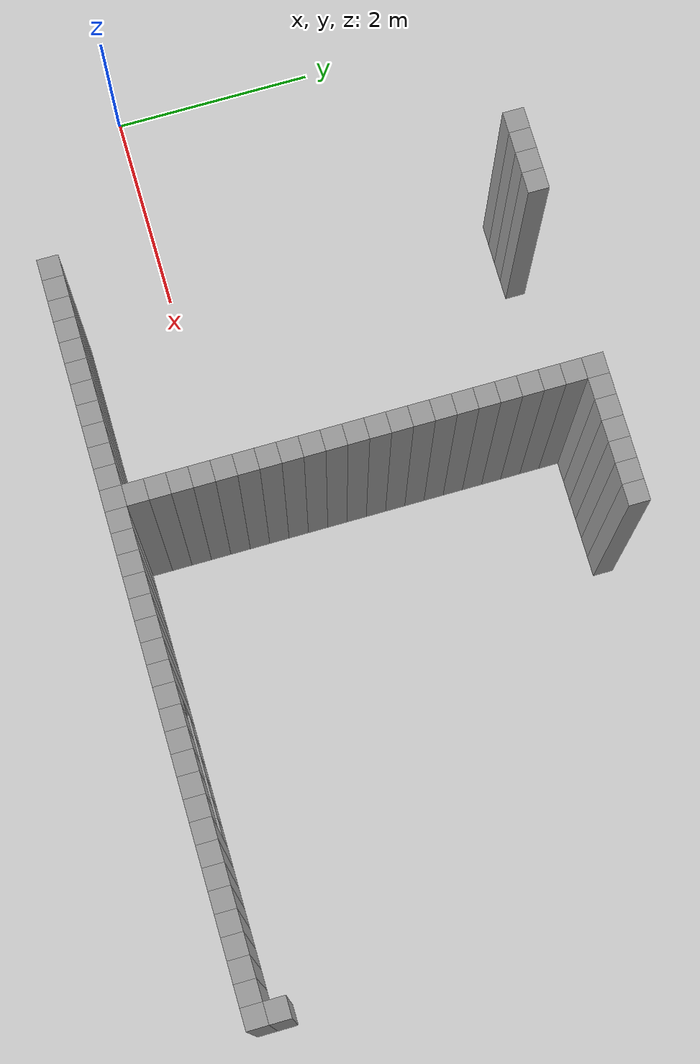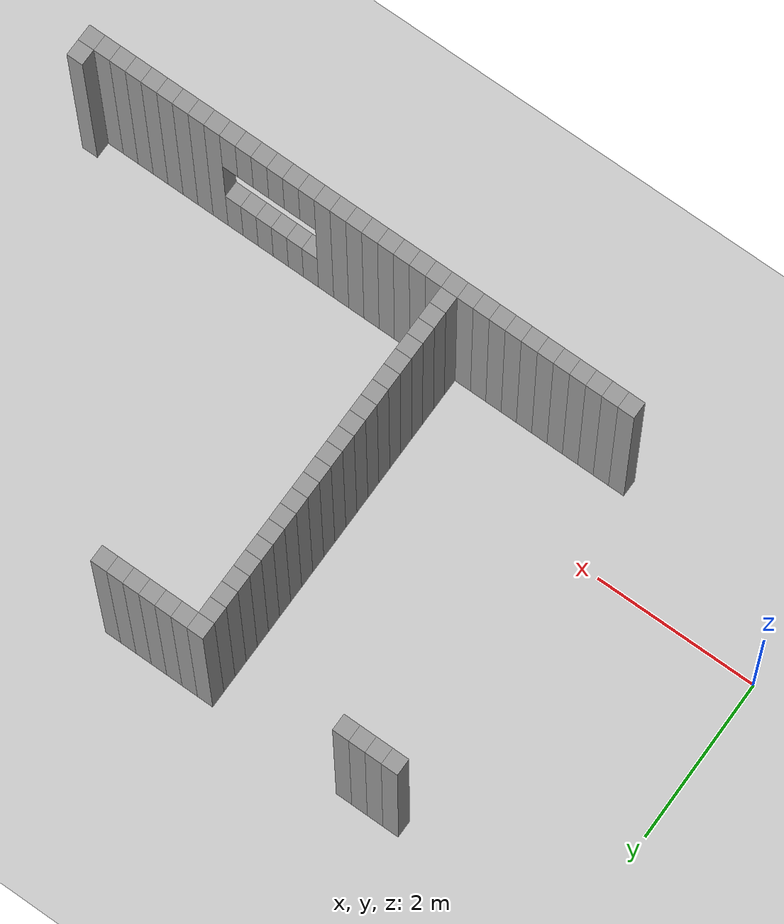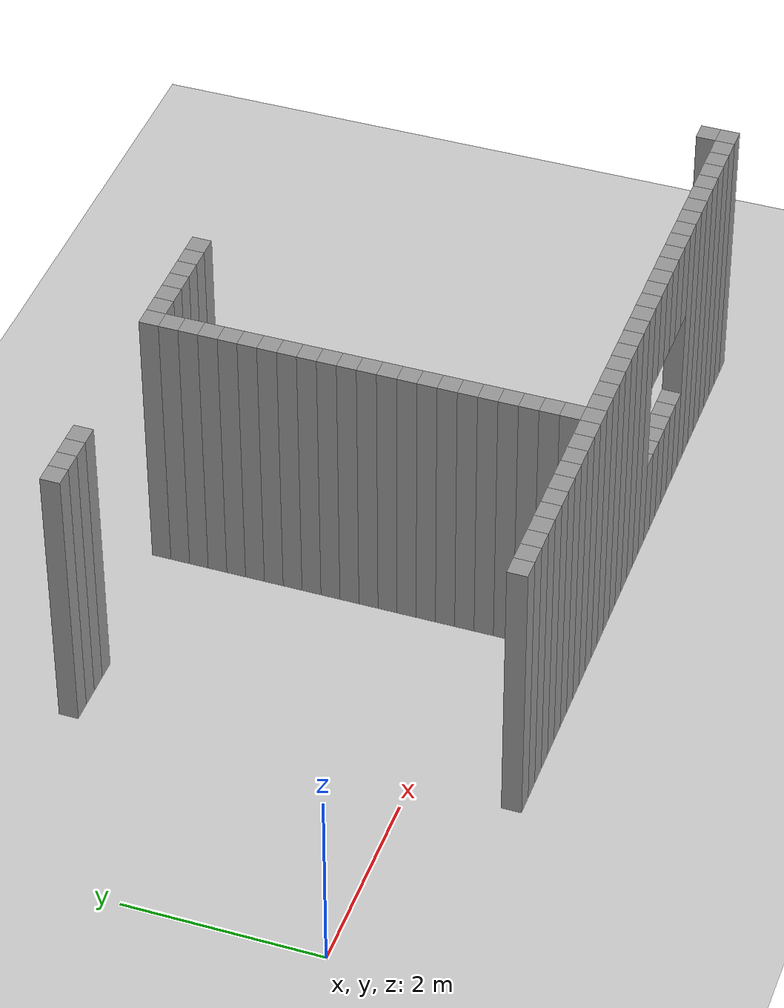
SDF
<sdf version="1.7">
 <world name="default">
  <model name="ground_plane">
   <static>1</static>
   <link name="link">
    <collision name="collision">
     <geometry><plane><normal>0 0 1</normal><size>100 100</size></plane></geometry>
     <surface>
      <contact><collide_bitmask>65535</collide_bitmask></contact>
      <friction><ode><mu>100</mu><mu2>50</mu2></ode></friction>
     </surface>
    </collision>
    <visual name="visual">
     <cast_shadows>0</cast_shadows>
     <geometry><plane><normal>0 0 1</normal><size>100 100</size></plane></geometry>
     <material>
      <script><uri>file://media/materials/scripts/gazebo.material</uri><name>Gazebo/Grey</name></script>
     </material>
    </visual>
   </link>
  </model>
  <model name="05222">
   <pose>-1 -1 0 0 -0 0</pose>
   <link name="Wall_22">
    <collision name="Wall_22_Collision">
     <geometry><box><size>0.2 0.2 3</size></box></geometry>
     <pose>0 0 1.5 0 -0 0</pose>
    </collision>
    <visual name="Wall_22_Visual">
     <pose>0 0 1.5 0 -0 0</pose>
     <geometry><box><size>0.2 0.2 3</size></box></geometry>
     <material>
      <script><uri>file://media/materials/scripts/gazebo.material</uri><name>Gazebo/Grey</name></script>
      <ambient>1 1 1 1</ambient>
     </material>
     <meta><layer>0</layer></meta>
    </visual>
    <pose>3.4000000000000004 0.0 0 0 -0 0</pose>
   </link>
   <link name="Wall_23">
    <collision name="Wall_23_Collision">
     <geometry><box><size>0.2 0.2 3</size></box></geometry>
     <pose>0 0 1.5 0 -0 0</pose>
    </collision>
    <visual name="Wall_23_Visual">
     <pose>0 0 1.5 0 -0 0</pose>
     <geometry><box><size>0.2 0.2 3</size></box></geometry>
     <material>
      <script><uri>file://media/materials/scripts/gazebo.material</uri><name>Gazebo/Grey</name></script>
      <ambient>1 1 1 1</ambient>
     </material>
     <meta><layer>0</layer></meta>
    </visual>
    <pose>3.6 0.0 0 0 -0 0</pose>
   </link>
   <link name="Wall_24">
    <collision name="Wall_24_Collision">
     <geometry><box><size>0.2 0.2 3</size></box></geometry>
     <pose>0 0 1.5 0 -0 0</pose>
    </collision>
    <visual name="Wall_24_Visual">
     <pose>0 0 1.5 0 -0 0</pose>
     <geometry><box><size>0.2 0.2 3</size></box></geometry>
     <material>
      <script><uri>file://media/materials/scripts/gazebo.material</uri><name>Gazebo/Grey</name></script>
      <ambient>1 1 1 1</ambient>
     </material>
     <meta><layer>0</layer></meta>
    </visual>
    <pose>3.8000000000000003 0.0 0 0 -0 0</pose>
   </link>
   <link name="Wall_25">
    <collision name="Wall_25_Collision">
     <geometry><box><size>0.2 0.2 3</size></box></geometry>
     <pose>0 0 1.5 0 -0 0</pose>
    </collision>
    <visual name="Wall_25_Visual">
     <pose>0 0 1.5 0 -0 0</pose>
     <geometry><box><size>0.2 0.2 3</size></box></geometry>
     <material>
      <script><uri>file://media/materials/scripts/gazebo.material</uri><name>Gazebo/Grey</name></script>
      <ambient>1 1 1 1</ambient>
     </material>
     <meta><layer>0</layer></meta>
    </visual>
    <pose>4.0 0.0 0 0 -0 0</pose>
   </link>
   <link name="Wall_26">
    <collision name="Wall_26_Collision">
     <geometry><box><size>0.2 0.2 3</size></box></geometry>
     <pose>0 0 1.5 0 -0 0</pose>
    </collision>
    <visual name="Wall_26_Visual">
     <pose>0 0 1.5 0 -0 0</pose>
     <geometry><box><size>0.2 0.2 3</size></box></geometry>
     <material>
      <script><uri>file://media/materials/scripts/gazebo.material</uri><name>Gazebo/Grey</name></script>
      <ambient>1 1 1 1</ambient>
     </material>
     <meta><layer>0</layer></meta>
    </visual>
    <pose>4.2 0.0 0 0 -0 0</pose>
   </link>
   <link name="Wall_27">
    <collision name="Wall_27_Collision">
     <geometry><box><size>0.2 0.2 3</size></box></geometry>
     <pose>0 0 1.5 0 -0 0</pose>
    </collision>
    <visual name="Wall_27_Visual">
     <pose>0 0 1.5 0 -0 0</pose>
     <geometry><box><size>0.2 0.2 3</size></box></geometry>
     <material>
      <script><uri>file://media/materials/scripts/gazebo.material</uri><name>Gazebo/Grey</name></script>
      <ambient>1 1 1 1</ambient>
     </material>
     <meta><layer>0</layer></meta>
    </visual>
    <pose>4.4 0.0 0 0 -0 0</pose>
   </link>
   <link name="Wall_28">
    <collision name="Wall_28_Collision">
     <geometry><box><size>0.2 0.2 3</size></box></geometry>
     <pose>0 0 1.5 0 -0 0</pose>
    </collision>
    <visual name="Wall_28_Visual">
     <pose>0 0 1.5 0 -0 0</pose>
     <geometry><box><size>0.2 0.2 3</size></box></geometry>
     <material>
      <script><uri>file://media/materials/scripts/gazebo.material</uri><name>Gazebo/Grey</name></script>
      <ambient>1 1 1 1</ambient>
     </material>
     <meta><layer>0</layer></meta>
    </visual>
    <pose>4.6000000000000005 0.0 0 0 -0 0</pose>
   </link>
   <link name="Wall_29">
    <collision name="Wall_29_Collision">
     <geometry><box><size>0.2 0.2 3</size></box></geometry>
     <pose>0 0 1.5 0 -0 0</pose>
    </collision>
    <visual name="Wall_29_Visual">
     <pose>0 0 1.5 0 -0 0</pose>
     <geometry><box><size>0.2 0.2 3</size></box></geometry>
     <material>
      <script><uri>file://media/materials/scripts/gazebo.material</uri><name>Gazebo/Grey</name></script>
      <ambient>1 1 1 1</ambient>
     </material>
     <meta><layer>0</layer></meta>
    </visual>
    <pose>4.800000000000001 0.0 0 0 -0 0</pose>
   </link>
   <link name="Wall_30">
    <collision name="Wall_30_Collision">
     <geometry><box><size>0.2 0.2 3</size></box></geometry>
     <pose>0 0 1.5 0 -0 0</pose>
    </collision>
    <visual name="Wall_30_Visual">
     <pose>0 0 1.5 0 -0 0</pose>
     <geometry><box><size>0.2 0.2 3</size></box></geometry>
     <material>
      <script><uri>file://media/materials/scripts/gazebo.material</uri><name>Gazebo/Grey</name></script>
      <ambient>1 1 1 1</ambient>
     </material>
     <meta><layer>0</layer></meta>
    </visual>
    <pose>5.0 0.0 0 0 -0 0</pose>
   </link>
   <link name="Wall_31">
    <collision name="Wall_31_Collision">
     <geometry><box><size>0.2 0.2 3</size></box></geometry>
     <pose>0 0 1.5 0 -0 0</pose>
    </collision>
    <visual name="Wall_31_Visual">
     <pose>0 0 1.5 0 -0 0</pose>
     <geometry><box><size>0.2 0.2 3</size></box></geometry>
     <material>
      <script><uri>file://media/materials/scripts/gazebo.material</uri><name>Gazebo/Grey</name></script>
      <ambient>1 1 1 1</ambient>
     </material>
     <meta><layer>0</layer></meta>
    </visual>
    <pose>5.2 0.0 0 0 -0 0</pose>
   </link>
   <link name="Wall_32">
    <collision name="Wall_32_Collision">
     <geometry><box><size>0.2 0.2 3</size></box></geometry>
     <pose>0 0 1.5 0 -0 0</pose>
    </collision>
    <visual name="Wall_32_Visual">
     <pose>0 0 1.5 0 -0 0</pose>
     <geometry><box><size>0.2 0.2 3</size></box></geometry>
     <material>
      <script><uri>file://media/materials/scripts/gazebo.material</uri><name>Gazebo/Grey</name></script>
      <ambient>1 1 1 1</ambient>
     </material>
     <meta><layer>0</layer></meta>
    </visual>
    <pose>5.4 0.0 0 0 -0 0</pose>
   </link>
   <link name="Wall_33">
    <collision name="Wall_33_Collision">
     <geometry><box><size>0.2 0.2 3</size></box></geometry>
     <pose>0 0 1.5 0 -0 0</pose>
    </collision>
    <visual name="Wall_33_Visual">
     <pose>0 0 1.5 0 -0 0</pose>
     <geometry><box><size>0.2 0.2 3</size></box></geometry>
     <material>
      <script><uri>file://media/materials/scripts/gazebo.material</uri><name>Gazebo/Grey</name></script>
      <ambient>1 1 1 1</ambient>
     </material>
     <meta><layer>0</layer></meta>
    </visual>
    <pose>5.6000000000000005 0.0 0 0 -0 0</pose>
   </link>
   <link name="Wall_34">
    <collision name="Wall_34_Collision">
     <geometry><box><size>0.2 0.2 3</size></box></geometry>
     <pose>0 0 1.5 0 -0 0</pose>
    </collision>
    <visual name="Wall_34_Visual">
     <pose>0 0 1.5 0 -0 0</pose>
     <geometry><box><size>0.2 0.2 3</size></box></geometry>
     <material>
      <script><uri>file://media/materials/scripts/gazebo.material</uri><name>Gazebo/Grey</name></script>
      <ambient>1 1 1 1</ambient>
     </material>
     <meta><layer>0</layer></meta>
    </visual>
    <pose>5.800000000000001 0.0 0 0 -0 0</pose>
   </link>
   <link name="Wall_35">
    <collision name="Wall_35_Collision">
     <geometry><box><size>0.2 0.2 3</size></box></geometry>
     <pose>0 0 1.5 0 -0 0</pose>
    </collision>
    <visual name="Wall_35_Visual">
     <pose>0 0 1.5 0 -0 0</pose>
     <geometry><box><size>0.2 0.2 3</size></box></geometry>
     <material>
      <script><uri>file://media/materials/scripts/gazebo.material</uri><name>Gazebo/Grey</name></script>
      <ambient>1 1 1 1</ambient>
     </material>
     <meta><layer>0</layer></meta>
    </visual>
    <pose>6.0 0.0 0 0 -0 0</pose>
   </link>
   <link name="Wall_36">
    <collision name="Wall_36_Collision">
     <geometry><box><size>0.2 0.2 3</size></box></geometry>
     <pose>0 0 1.5 0 -0 0</pose>
    </collision>
    <visual name="Wall_36_Visual">
     <pose>0 0 1.5 0 -0 0</pose>
     <geometry><box><size>0.2 0.2 3</size></box></geometry>
     <material>
      <script><uri>file://media/materials/scripts/gazebo.material</uri><name>Gazebo/Grey</name></script>
      <ambient>1 1 1 1</ambient>
     </material>
     <meta><layer>0</layer></meta>
    </visual>
    <pose>6.2 0.0 0 0 -0 0</pose>
   </link>
   <link name="Wall_37">
    <collision name="Wall_37_Collision">
     <geometry><box><size>0.2 0.2 3</size></box></geometry>
     <pose>0 0 1.5 0 -0 0</pose>
    </collision>
    <visual name="Wall_37_Visual">
     <pose>0 0 1.5 0 -0 0</pose>
     <geometry><box><size>0.2 0.2 3</size></box></geometry>
     <material>
      <script><uri>file://media/materials/scripts/gazebo.material</uri><name>Gazebo/Grey</name></script>
      <ambient>1 1 1 1</ambient>
     </material>
     <meta><layer>0</layer></meta>
    </visual>
    <pose>6.4 0.0 0 0 -0 0</pose>
   </link>
   <link name="Wall_38">
    <collision name="Wall_38_Collision">
     <geometry><box><size>0.2 0.2 3</size></box></geometry>
     <pose>0 0 1.5 0 -0 0</pose>
    </collision>
    <visual name="Wall_38_Visual">
     <pose>0 0 1.5 0 -0 0</pose>
     <geometry><box><size>0.2 0.2 3</size></box></geometry>
     <material>
      <script><uri>file://media/materials/scripts/gazebo.material</uri><name>Gazebo/Grey</name></script>
      <ambient>1 1 1 1</ambient>
     </material>
     <meta><layer>0</layer></meta>
    </visual>
    <pose>6.6000000000000005 0.0 0 0 -0 0</pose>
   </link>
   <link name="Wall_39">
    <collision name="Wall_39_Collision">
     <geometry><box><size>0.2 0.2 3</size></box></geometry>
     <pose>0 0 1.5 0 -0 0</pose>
    </collision>
    <visual name="Wall_39_Visual">
     <pose>0 0 1.5 0 -0 0</pose>
     <geometry><box><size>0.2 0.2 3</size></box></geometry>
     <material>
      <script><uri>file://media/materials/scripts/gazebo.material</uri><name>Gazebo/Grey</name></script>
      <ambient>1 1 1 1</ambient>
     </material>
     <meta><layer>0</layer></meta>
    </visual>
    <pose>6.800000000000001 0.0 0 0 -0 0</pose>
   </link>
   <link name="Wall_40">
    <collision name="Wall_40_Collision">
     <geometry><box><size>0.2 0.2 3</size></box></geometry>
     <pose>0 0 1.5 0 -0 0</pose>
    </collision>
    <visual name="Wall_40_Visual">
     <pose>0 0 1.5 0 -0 0</pose>
     <geometry><box><size>0.2 0.2 3</size></box></geometry>
     <material>
      <script><uri>file://media/materials/scripts/gazebo.material</uri><name>Gazebo/Grey</name></script>
      <ambient>1 1 1 1</ambient>
     </material>
     <meta><layer>0</layer></meta>
    </visual>
    <pose>7.0 0.0 0 0 -0 0</pose>
   </link>
   <link name="Wall_41">
    <collision name="Wall_41_Collision">
     <geometry><box><size>0.2 0.2 3</size></box></geometry>
     <pose>0 0 1.5 0 -0 0</pose>
    </collision>
    <visual name="Wall_41_Visual">
     <pose>0 0 1.5 0 -0 0</pose>
     <geometry><box><size>0.2 0.2 3</size></box></geometry>
     <material>
      <script><uri>file://media/materials/scripts/gazebo.material</uri><name>Gazebo/Grey</name></script>
      <ambient>1 1 1 1</ambient>
     </material>
     <meta><layer>0</layer></meta>
    </visual>
    <pose>7.2 0.0 0 0 -0 0</pose>
   </link>
   <link name="Wall_42">
    <collision name="Wall_42_Collision">
     <geometry><box><size>0.2 0.2 1.0</size></box></geometry>
     <pose>0 0 0.5 0 -0 0</pose>
    </collision>
    <visual name="Wall_42_Visual">
     <pose>0 0 0.5 0 -0 0</pose>
     <geometry><box><size>0.2 0.2 1.0</size></box></geometry>
     <material>
      <script><uri>file://media/materials/scripts/gazebo.material</uri><name>Gazebo/Grey</name></script>
      <ambient>1 1 1 1</ambient>
     </material>
     <meta><layer>0</layer></meta>
    </visual>
    <pose>7.4 0.0 0 0 -0 0</pose>
   </link>
   <link name="Wall_43">
    <collision name="Wall_43_Collision">
     <geometry><box><size>0.2 0.2 1.0</size></box></geometry>
     <pose>0 0 2.5 0 -0 0</pose>
    </collision>
    <visual name="Wall_43_Visual">
     <pose>0 0 2.5 0 -0 0</pose>
     <geometry><box><size>0.2 0.2 1.0</size></box></geometry>
     <material>
      <script><uri>file://media/materials/scripts/gazebo.material</uri><name>Gazebo/Grey</name></script>
      <ambient>1 1 1 1</ambient>
     </material>
     <meta><layer>0</layer></meta>
    </visual>
    <pose>7.4 0.0 0 0 -0 0</pose>
   </link>
   <link name="Window_42">
    <collision name="Window_42_Collision">
     <geometry><box><size>0.2 0.2 1.0</size></box></geometry>
     <pose>0 0 1.5 0 -0 0</pose>
    </collision>
    <visual name="Wall_43_Visual">
     <pose>0 0 2.5 0 -0 0</pose>
     <geometry><box><size>0.2 0.2 1.0</size></box></geometry>
     <material>
      <script><uri>file://media/materials/scripts/gazebo.material</uri><name>Gazebo/Grey</name></script>
      <ambient>1 1 1 1</ambient>
     </material>
     <meta><layer>0</layer></meta>
    </visual>
    <pose>7.4 0.0 0 0 -0 0</pose>
   </link>
   <link name="Wall_44">
    <collision name="Wall_44_Collision">
     <geometry><box><size>0.2 0.2 1.0</size></box></geometry>
     <pose>0 0 0.5 0 -0 0</pose>
    </collision>
    <visual name="Wall_44_Visual">
     <pose>0 0 0.5 0 -0 0</pose>
     <geometry><box><size>0.2 0.2 1.0</size></box></geometry>
     <material>
      <script><uri>file://media/materials/scripts/gazebo.material</uri><name>Gazebo/Grey</name></script>
      <ambient>1 1 1 1</ambient>
     </material>
     <meta><layer>0</layer></meta>
    </visual>
    <pose>7.6000000000000005 0.0 0 0 -0 0</pose>
   </link>
   <link name="Wall_45">
    <collision name="Wall_45_Collision">
     <geometry><box><size>0.2 0.2 1.0</size></box></geometry>
     <pose>0 0 2.5 0 -0 0</pose>
    </collision>
    <visual name="Wall_45_Visual">
     <pose>0 0 2.5 0 -0 0</pose>
     <geometry><box><size>0.2 0.2 1.0</size></box></geometry>
     <material>
      <script><uri>file://media/materials/scripts/gazebo.material</uri><name>Gazebo/Grey</name></script>
      <ambient>1 1 1 1</ambient>
     </material>
     <meta><layer>0</layer></meta>
    </visual>
    <pose>7.6000000000000005 0.0 0 0 -0 0</pose>
   </link>
   <link name="Window_44">
    <collision name="Window_44_Collision">
     <geometry><box><size>0.2 0.2 1.0</size></box></geometry>
     <pose>0 0 1.5 0 -0 0</pose>
    </collision>
    <visual name="Wall_45_Visual">
     <pose>0 0 2.5 0 -0 0</pose>
     <geometry><box><size>0.2 0.2 1.0</size></box></geometry>
     <material>
      <script><uri>file://media/materials/scripts/gazebo.material</uri><name>Gazebo/Grey</name></script>
      <ambient>1 1 1 1</ambient>
     </material>
     <meta><layer>0</layer></meta>
    </visual>
    <pose>7.6000000000000005 0.0 0 0 -0 0</pose>
   </link>
   <link name="Wall_46">
    <collision name="Wall_46_Collision">
     <geometry><box><size>0.2 0.2 1.0</size></box></geometry>
     <pose>0 0 0.5 0 -0 0</pose>
    </collision>
    <visual name="Wall_46_Visual">
     <pose>0 0 0.5 0 -0 0</pose>
     <geometry><box><size>0.2 0.2 1.0</size></box></geometry>
     <material>
      <script><uri>file://media/materials/scripts/gazebo.material</uri><name>Gazebo/Grey</name></script>
      <ambient>1 1 1 1</ambient>
     </material>
     <meta><layer>0</layer></meta>
    </visual>
    <pose>7.800000000000001 0.0 0 0 -0 0</pose>
   </link>
   <link name="Wall_47">
    <collision name="Wall_47_Collision">
     <geometry><box><size>0.2 0.2 1.0</size></box></geometry>
     <pose>0 0 2.5 0 -0 0</pose>
    </collision>
    <visual name="Wall_47_Visual">
     <pose>0 0 2.5 0 -0 0</pose>
     <geometry><box><size>0.2 0.2 1.0</size></box></geometry>
     <material>
      <script><uri>file://media/materials/scripts/gazebo.material</uri><name>Gazebo/Grey</name></script>
      <ambient>1 1 1 1</ambient>
     </material>
     <meta><layer>0</layer></meta>
    </visual>
    <pose>7.800000000000001 0.0 0 0 -0 0</pose>
   </link>
   <link name="Window_46">
    <collision name="Window_46_Collision">
     <geometry><box><size>0.2 0.2 1.0</size></box></geometry>
     <pose>0 0 1.5 0 -0 0</pose>
    </collision>
    <visual name="Wall_47_Visual">
     <pose>0 0 2.5 0 -0 0</pose>
     <geometry><box><size>0.2 0.2 1.0</size></box></geometry>
     <material>
      <script><uri>file://media/materials/scripts/gazebo.material</uri><name>Gazebo/Grey</name></script>
      <ambient>1 1 1 1</ambient>
     </material>
     <meta><layer>0</layer></meta>
    </visual>
    <pose>7.800000000000001 0.0 0 0 -0 0</pose>
   </link>
   <link name="Wall_48">
    <collision name="Wall_48_Collision">
     <geometry><box><size>0.2 0.2 1.0</size></box></geometry>
     <pose>0 0 0.5 0 -0 0</pose>
    </collision>
    <visual name="Wall_48_Visual">
     <pose>0 0 0.5 0 -0 0</pose>
     <geometry><box><size>0.2 0.2 1.0</size></box></geometry>
     <material>
      <script><uri>file://media/materials/scripts/gazebo.material</uri><name>Gazebo/Grey</name></script>
      <ambient>1 1 1 1</ambient>
     </material>
     <meta><layer>0</layer></meta>
    </visual>
    <pose>8.0 0.0 0 0 -0 0</pose>
   </link>
   <link name="Wall_49">
    <collision name="Wall_49_Collision">
     <geometry><box><size>0.2 0.2 1.0</size></box></geometry>
     <pose>0 0 2.5 0 -0 0</pose>
    </collision>
    <visual name="Wall_49_Visual">
     <pose>0 0 2.5 0 -0 0</pose>
     <geometry><box><size>0.2 0.2 1.0</size></box></geometry>
     <material>
      <script><uri>file://media/materials/scripts/gazebo.material</uri><name>Gazebo/Grey</name></script>
      <ambient>1 1 1 1</ambient>
     </material>
     <meta><layer>0</layer></meta>
    </visual>
    <pose>8.0 0.0 0 0 -0 0</pose>
   </link>
   <link name="Window_48">
    <collision name="Window_48_Collision">
     <geometry><box><size>0.2 0.2 1.0</size></box></geometry>
     <pose>0 0 1.5 0 -0 0</pose>
    </collision>
    <visual name="Wall_49_Visual">
     <pose>0 0 2.5 0 -0 0</pose>
     <geometry><box><size>0.2 0.2 1.0</size></box></geometry>
     <material>
      <script><uri>file://media/materials/scripts/gazebo.material</uri><name>Gazebo/Grey</name></script>
      <ambient>1 1 1 1</ambient>
     </material>
     <meta><layer>0</layer></meta>
    </visual>
    <pose>8.0 0.0 0 0 -0 0</pose>
   </link>
   <link name="Wall_50">
    <collision name="Wall_50_Collision">
     <geometry><box><size>0.2 0.2 1.0</size></box></geometry>
     <pose>0 0 0.5 0 -0 0</pose>
    </collision>
    <visual name="Wall_50_Visual">
     <pose>0 0 0.5 0 -0 0</pose>
     <geometry><box><size>0.2 0.2 1.0</size></box></geometry>
     <material>
      <script><uri>file://media/materials/scripts/gazebo.material</uri><name>Gazebo/Grey</name></script>
      <ambient>1 1 1 1</ambient>
     </material>
     <meta><layer>0</layer></meta>
    </visual>
    <pose>8.200000000000001 0.0 0 0 -0 0</pose>
   </link>
   <link name="Wall_51">
    <collision name="Wall_51_Collision">
     <geometry><box><size>0.2 0.2 1.0</size></box></geometry>
     <pose>0 0 2.5 0 -0 0</pose>
    </collision>
    <visual name="Wall_51_Visual">
     <pose>0 0 2.5 0 -0 0</pose>
     <geometry><box><size>0.2 0.2 1.0</size></box></geometry>
     <material>
      <script><uri>file://media/materials/scripts/gazebo.material</uri><name>Gazebo/Grey</name></script>
      <ambient>1 1 1 1</ambient>
     </material>
     <meta><layer>0</layer></meta>
    </visual>
    <pose>8.200000000000001 0.0 0 0 -0 0</pose>
   </link>
   <link name="Window_50">
    <collision name="Window_50_Collision">
     <geometry><box><size>0.2 0.2 1.0</size></box></geometry>
     <pose>0 0 1.5 0 -0 0</pose>
    </collision>
    <visual name="Wall_51_Visual">
     <pose>0 0 2.5 0 -0 0</pose>
     <geometry><box><size>0.2 0.2 1.0</size></box></geometry>
     <material>
      <script><uri>file://media/materials/scripts/gazebo.material</uri><name>Gazebo/Grey</name></script>
      <ambient>1 1 1 1</ambient>
     </material>
     <meta><layer>0</layer></meta>
    </visual>
    <pose>8.200000000000001 0.0 0 0 -0 0</pose>
   </link>
   <link name="Wall_52">
    <collision name="Wall_52_Collision">
     <geometry><box><size>0.2 0.2 1.0</size></box></geometry>
     <pose>0 0 0.5 0 -0 0</pose>
    </collision>
    <visual name="Wall_52_Visual">
     <pose>0 0 0.5 0 -0 0</pose>
     <geometry><box><size>0.2 0.2 1.0</size></box></geometry>
     <material>
      <script><uri>file://media/materials/scripts/gazebo.material</uri><name>Gazebo/Grey</name></script>
      <ambient>1 1 1 1</ambient>
     </material>
     <meta><layer>0</layer></meta>
    </visual>
    <pose>8.4 0.0 0 0 -0 0</pose>
   </link>
   <link name="Wall_53">
    <collision name="Wall_53_Collision">
     <geometry><box><size>0.2 0.2 1.0</size></box></geometry>
     <pose>0 0 2.5 0 -0 0</pose>
    </collision>
    <visual name="Wall_53_Visual">
     <pose>0 0 2.5 0 -0 0</pose>
     <geometry><box><size>0.2 0.2 1.0</size></box></geometry>
     <material>
      <script><uri>file://media/materials/scripts/gazebo.material</uri><name>Gazebo/Grey</name></script>
      <ambient>1 1 1 1</ambient>
     </material>
     <meta><layer>0</layer></meta>
    </visual>
    <pose>8.4 0.0 0 0 -0 0</pose>
   </link>
   <link name="Window_52">
    <collision name="Window_52_Collision">
     <geometry><box><size>0.2 0.2 1.0</size></box></geometry>
     <pose>0 0 1.5 0 -0 0</pose>
    </collision>
    <visual name="Wall_53_Visual">
     <pose>0 0 2.5 0 -0 0</pose>
     <geometry><box><size>0.2 0.2 1.0</size></box></geometry>
     <material>
      <script><uri>file://media/materials/scripts/gazebo.material</uri><name>Gazebo/Grey</name></script>
      <ambient>1 1 1 1</ambient>
     </material>
     <meta><layer>0</layer></meta>
    </visual>
    <pose>8.4 0.0 0 0 -0 0</pose>
   </link>
   <link name="Wall_54">
    <collision name="Wall_54_Collision">
     <geometry><box><size>0.2 0.2 3</size></box></geometry>
     <pose>0 0 1.5 0 -0 0</pose>
    </collision>
    <visual name="Wall_54_Visual">
     <pose>0 0 1.5 0 -0 0</pose>
     <geometry><box><size>0.2 0.2 3</size></box></geometry>
     <material>
      <script><uri>file://media/materials/scripts/gazebo.material</uri><name>Gazebo/Grey</name></script>
      <ambient>1 1 1 1</ambient>
     </material>
     <meta><layer>0</layer></meta>
    </visual>
    <pose>8.6 0.0 0 0 -0 0</pose>
   </link>
   <link name="Wall_55">
    <collision name="Wall_55_Collision">
     <geometry><box><size>0.2 0.2 3</size></box></geometry>
     <pose>0 0 1.5 0 -0 0</pose>
    </collision>
    <visual name="Wall_55_Visual">
     <pose>0 0 1.5 0 -0 0</pose>
     <geometry><box><size>0.2 0.2 3</size></box></geometry>
     <material>
      <script><uri>file://media/materials/scripts/gazebo.material</uri><name>Gazebo/Grey</name></script>
      <ambient>1 1 1 1</ambient>
     </material>
     <meta><layer>0</layer></meta>
    </visual>
    <pose>8.8 0.0 0 0 -0 0</pose>
   </link>
   <link name="Wall_56">
    <collision name="Wall_56_Collision">
     <geometry><box><size>0.2 0.2 3</size></box></geometry>
     <pose>0 0 1.5 0 -0 0</pose>
    </collision>
    <visual name="Wall_56_Visual">
     <pose>0 0 1.5 0 -0 0</pose>
     <geometry><box><size>0.2 0.2 3</size></box></geometry>
     <material>
      <script><uri>file://media/materials/scripts/gazebo.material</uri><name>Gazebo/Grey</name></script>
      <ambient>1 1 1 1</ambient>
     </material>
     <meta><layer>0</layer></meta>
    </visual>
    <pose>9.0 0.0 0 0 -0 0</pose>
   </link>
   <link name="Wall_57">
    <collision name="Wall_57_Collision">
     <geometry><box><size>0.2 0.2 3</size></box></geometry>
     <pose>0 0 1.5 0 -0 0</pose>
    </collision>
    <visual name="Wall_57_Visual">
     <pose>0 0 1.5 0 -0 0</pose>
     <geometry><box><size>0.2 0.2 3</size></box></geometry>
     <material>
      <script><uri>file://media/materials/scripts/gazebo.material</uri><name>Gazebo/Grey</name></script>
      <ambient>1 1 1 1</ambient>
     </material>
     <meta><layer>0</layer></meta>
    </visual>
    <pose>9.200000000000001 0.0 0 0 -0 0</pose>
   </link>
   <link name="Wall_58">
    <collision name="Wall_58_Collision">
     <geometry><box><size>0.2 0.2 3</size></box></geometry>
     <pose>0 0 1.5 0 -0 0</pose>
    </collision>
    <visual name="Wall_58_Visual">
     <pose>0 0 1.5 0 -0 0</pose>
     <geometry><box><size>0.2 0.2 3</size></box></geometry>
     <material>
      <script><uri>file://media/materials/scripts/gazebo.material</uri><name>Gazebo/Grey</name></script>
      <ambient>1 1 1 1</ambient>
     </material>
     <meta><layer>0</layer></meta>
    </visual>
    <pose>9.4 0.0 0 0 -0 0</pose>
   </link>
   <link name="Wall_59">
    <collision name="Wall_59_Collision">
     <geometry><box><size>0.2 0.2 3</size></box></geometry>
     <pose>0 0 1.5 0 -0 0</pose>
    </collision>
    <visual name="Wall_59_Visual">
     <pose>0 0 1.5 0 -0 0</pose>
     <geometry><box><size>0.2 0.2 3</size></box></geometry>
     <material>
      <script><uri>file://media/materials/scripts/gazebo.material</uri><name>Gazebo/Grey</name></script>
      <ambient>1 1 1 1</ambient>
     </material>
     <meta><layer>0</layer></meta>
    </visual>
    <pose>9.600000000000001 0.0 0 0 -0 0</pose>
   </link>
   <link name="Wall_60">
    <collision name="Wall_60_Collision">
     <geometry><box><size>0.2 0.2 3</size></box></geometry>
     <pose>0 0 1.5 0 -0 0</pose>
    </collision>
    <visual name="Wall_60_Visual">
     <pose>0 0 1.5 0 -0 0</pose>
     <geometry><box><size>0.2 0.2 3</size></box></geometry>
     <material>
      <script><uri>file://media/materials/scripts/gazebo.material</uri><name>Gazebo/Grey</name></script>
      <ambient>1 1 1 1</ambient>
     </material>
     <meta><layer>0</layer></meta>
    </visual>
    <pose>9.8 0.0 0 0 -0 0</pose>
   </link>
   <link name="Wall_61">
    <collision name="Wall_61_Collision">
     <geometry><box><size>0.2 0.2 3</size></box></geometry>
     <pose>0 0 1.5 0 -0 0</pose>
    </collision>
    <visual name="Wall_61_Visual">
     <pose>0 0 1.5 0 -0 0</pose>
     <geometry><box><size>0.2 0.2 3</size></box></geometry>
     <material>
      <script><uri>file://media/materials/scripts/gazebo.material</uri><name>Gazebo/Grey</name></script>
      <ambient>1 1 1 1</ambient>
     </material>
     <meta><layer>0</layer></meta>
    </visual>
    <pose>10.0 0.0 0 0 -0 0</pose>
   </link>
   <link name="Wall_62">
    <collision name="Wall_62_Collision">
     <geometry><box><size>0.2 0.2 3</size></box></geometry>
     <pose>0 0 1.5 0 -0 0</pose>
    </collision>
    <visual name="Wall_62_Visual">
     <pose>0 0 1.5 0 -0 0</pose>
     <geometry><box><size>0.2 0.2 3</size></box></geometry>
     <material>
      <script><uri>file://media/materials/scripts/gazebo.material</uri><name>Gazebo/Grey</name></script>
      <ambient>1 1 1 1</ambient>
     </material>
     <meta><layer>0</layer></meta>
    </visual>
    <pose>10.200000000000001 0.0 0 0 -0 0</pose>
   </link>
   <link name="Wall_120">
    <collision name="Wall_120_Collision">
     <geometry><box><size>0.2 0.2 3</size></box></geometry>
     <pose>0 0 1.5 0 -0 0</pose>
    </collision>
    <visual name="Wall_120_Visual">
     <pose>0 0 1.5 0 -0 0</pose>
     <geometry><box><size>0.2 0.2 3</size></box></geometry>
     <material>
      <script><uri>file://media/materials/scripts/gazebo.material</uri><name>Gazebo/Grey</name></script>
      <ambient>1 1 1 1</ambient>
     </material>
     <meta><layer>0</layer></meta>
    </visual>
    <pose>5.6000000000000005 0.2 0 0 -0 0</pose>
   </link>
   <link name="Wall_121">
    <collision name="Wall_121_Collision">
     <geometry><box><size>0.2 0.2 3</size></box></geometry>
     <pose>0 0 1.5 0 -0 0</pose>
    </collision>
    <visual name="Wall_121_Visual">
     <pose>0 0 1.5 0 -0 0</pose>
     <geometry><box><size>0.2 0.2 3</size></box></geometry>
     <material>
      <script><uri>file://media/materials/scripts/gazebo.material</uri><name>Gazebo/Grey</name></script>
      <ambient>1 1 1 1</ambient>
     </material>
     <meta><layer>0</layer></meta>
    </visual>
    <pose>10.200000000000001 0.2 0 0 -0 0</pose>
   </link>
   <link name="Wall_125">
    <collision name="Wall_125_Collision">
     <geometry><box><size>0.2 0.2 3</size></box></geometry>
     <pose>0 0 1.5 0 -0 0</pose>
    </collision>
    <visual name="Wall_125_Visual">
     <pose>0 0 1.5 0 -0 0</pose>
     <geometry><box><size>0.2 0.2 3</size></box></geometry>
     <material>
      <script><uri>file://media/materials/scripts/gazebo.material</uri><name>Gazebo/Grey</name></script>
      <ambient>1 1 1 1</ambient>
     </material>
     <meta><layer>0</layer></meta>
    </visual>
    <pose>5.6000000000000005 0.4 0 0 -0 0</pose>
   </link>
   <link name="Wall_130">
    <collision name="Wall_130_Collision">
     <geometry><box><size>0.2 0.2 3</size></box></geometry>
     <pose>0 0 1.5 0 -0 0</pose>
    </collision>
    <visual name="Wall_130_Visual">
     <pose>0 0 1.5 0 -0 0</pose>
     <geometry><box><size>0.2 0.2 3</size></box></geometry>
     <material>
      <script><uri>file://media/materials/scripts/gazebo.material</uri><name>Gazebo/Grey</name></script>
      <ambient>1 1 1 1</ambient>
     </material>
     <meta><layer>0</layer></meta>
    </visual>
    <pose>5.6000000000000005 0.6000000000000001 0 0 -0 0</pose>
   </link>
   <link name="Wall_135">
    <collision name="Wall_135_Collision">
     <geometry><box><size>0.2 0.2 3</size></box></geometry>
     <pose>0 0 1.5 0 -0 0</pose>
    </collision>
    <visual name="Wall_135_Visual">
     <pose>0 0 1.5 0 -0 0</pose>
     <geometry><box><size>0.2 0.2 3</size></box></geometry>
     <material>
      <script><uri>file://media/materials/scripts/gazebo.material</uri><name>Gazebo/Grey</name></script>
      <ambient>1 1 1 1</ambient>
     </material>
     <meta><layer>0</layer></meta>
    </visual>
    <pose>5.6000000000000005 0.8 0 0 -0 0</pose>
   </link>
   <link name="Wall_140">
    <collision name="Wall_140_Collision">
     <geometry><box><size>0.2 0.2 3</size></box></geometry>
     <pose>0 0 1.5 0 -0 0</pose>
    </collision>
    <visual name="Wall_140_Visual">
     <pose>0 0 1.5 0 -0 0</pose>
     <geometry><box><size>0.2 0.2 3</size></box></geometry>
     <material>
      <script><uri>file://media/materials/scripts/gazebo.material</uri><name>Gazebo/Grey</name></script>
      <ambient>1 1 1 1</ambient>
     </material>
     <meta><layer>0</layer></meta>
    </visual>
    <pose>5.6000000000000005 1.0 0 0 -0 0</pose>
   </link>
   <link name="Wall_145">
    <collision name="Wall_145_Collision">
     <geometry><box><size>0.2 0.2 3</size></box></geometry>
     <pose>0 0 1.5 0 -0 0</pose>
    </collision>
    <visual name="Wall_145_Visual">
     <pose>0 0 1.5 0 -0 0</pose>
     <geometry><box><size>0.2 0.2 3</size></box></geometry>
     <material>
      <script><uri>file://media/materials/scripts/gazebo.material</uri><name>Gazebo/Grey</name></script>
      <ambient>1 1 1 1</ambient>
     </material>
     <meta><layer>0</layer></meta>
    </visual>
    <pose>5.6000000000000005 1.2000000000000002 0 0 -0 0</pose>
   </link>
   <link name="Wall_150">
    <collision name="Wall_150_Collision">
     <geometry><box><size>0.2 0.2 3</size></box></geometry>
     <pose>0 0 1.5 0 -0 0</pose>
    </collision>
    <visual name="Wall_150_Visual">
     <pose>0 0 1.5 0 -0 0</pose>
     <geometry><box><size>0.2 0.2 3</size></box></geometry>
     <material>
      <script><uri>file://media/materials/scripts/gazebo.material</uri><name>Gazebo/Grey</name></script>
      <ambient>1 1 1 1</ambient>
     </material>
     <meta><layer>0</layer></meta>
    </visual>
    <pose>5.6000000000000005 1.4000000000000001 0 0 -0 0</pose>
   </link>
   <link name="Wall_156">
    <collision name="Wall_156_Collision">
     <geometry><box><size>0.2 0.2 3</size></box></geometry>
     <pose>0 0 1.5 0 -0 0</pose>
    </collision>
    <visual name="Wall_156_Visual">
     <pose>0 0 1.5 0 -0 0</pose>
     <geometry><box><size>0.2 0.2 3</size></box></geometry>
     <material>
      <script><uri>file://media/materials/scripts/gazebo.material</uri><name>Gazebo/Grey</name></script>
      <ambient>1 1 1 1</ambient>
     </material>
     <meta><layer>0</layer></meta>
    </visual>
    <pose>5.6000000000000005 1.6 0 0 -0 0</pose>
   </link>
   <link name="Wall_162">
    <collision name="Wall_162_Collision">
     <geometry><box><size>0.2 0.2 3</size></box></geometry>
     <pose>0 0 1.5 0 -0 0</pose>
    </collision>
    <visual name="Wall_162_Visual">
     <pose>0 0 1.5 0 -0 0</pose>
     <geometry><box><size>0.2 0.2 3</size></box></geometry>
     <material>
      <script><uri>file://media/materials/scripts/gazebo.material</uri><name>Gazebo/Grey</name></script>
      <ambient>1 1 1 1</ambient>
     </material>
     <meta><layer>0</layer></meta>
    </visual>
    <pose>5.6000000000000005 1.8 0 0 -0 0</pose>
   </link>
   <link name="Wall_168">
    <collision name="Wall_168_Collision">
     <geometry><box><size>0.2 0.2 3</size></box></geometry>
     <pose>0 0 1.5 0 -0 0</pose>
    </collision>
    <visual name="Wall_168_Visual">
     <pose>0 0 1.5 0 -0 0</pose>
     <geometry><box><size>0.2 0.2 3</size></box></geometry>
     <material>
      <script><uri>file://media/materials/scripts/gazebo.material</uri><name>Gazebo/Grey</name></script>
      <ambient>1 1 1 1</ambient>
     </material>
     <meta><layer>0</layer></meta>
    </visual>
    <pose>5.6000000000000005 2.0 0 0 -0 0</pose>
   </link>
   <link name="Wall_174">
    <collision name="Wall_174_Collision">
     <geometry><box><size>0.2 0.2 3</size></box></geometry>
     <pose>0 0 1.5 0 -0 0</pose>
    </collision>
    <visual name="Wall_174_Visual">
     <pose>0 0 1.5 0 -0 0</pose>
     <geometry><box><size>0.2 0.2 3</size></box></geometry>
     <material>
      <script><uri>file://media/materials/scripts/gazebo.material</uri><name>Gazebo/Grey</name></script>
      <ambient>1 1 1 1</ambient>
     </material>
     <meta><layer>0</layer></meta>
    </visual>
    <pose>5.6000000000000005 2.2 0 0 -0 0</pose>
   </link>
   <link name="Wall_180">
    <collision name="Wall_180_Collision">
     <geometry><box><size>0.2 0.2 3</size></box></geometry>
     <pose>0 0 1.5 0 -0 0</pose>
    </collision>
    <visual name="Wall_180_Visual">
     <pose>0 0 1.5 0 -0 0</pose>
     <geometry><box><size>0.2 0.2 3</size></box></geometry>
     <material>
      <script><uri>file://media/materials/scripts/gazebo.material</uri><name>Gazebo/Grey</name></script>
      <ambient>1 1 1 1</ambient>
     </material>
     <meta><layer>0</layer></meta>
    </visual>
    <pose>5.6000000000000005 2.4000000000000004 0 0 -0 0</pose>
   </link>
   <link name="Wall_186">
    <collision name="Wall_186_Collision">
     <geometry><box><size>0.2 0.2 3</size></box></geometry>
     <pose>0 0 1.5 0 -0 0</pose>
    </collision>
    <visual name="Wall_186_Visual">
     <pose>0 0 1.5 0 -0 0</pose>
     <geometry><box><size>0.2 0.2 3</size></box></geometry>
     <material>
      <script><uri>file://media/materials/scripts/gazebo.material</uri><name>Gazebo/Grey</name></script>
      <ambient>1 1 1 1</ambient>
     </material>
     <meta><layer>0</layer></meta>
    </visual>
    <pose>5.6000000000000005 2.6 0 0 -0 0</pose>
   </link>
   <link name="Wall_192">
    <collision name="Wall_192_Collision">
     <geometry><box><size>0.2 0.2 3</size></box></geometry>
     <pose>0 0 1.5 0 -0 0</pose>
    </collision>
    <visual name="Wall_192_Visual">
     <pose>0 0 1.5 0 -0 0</pose>
     <geometry><box><size>0.2 0.2 3</size></box></geometry>
     <material>
      <script><uri>file://media/materials/scripts/gazebo.material</uri><name>Gazebo/Grey</name></script>
      <ambient>1 1 1 1</ambient>
     </material>
     <meta><layer>0</layer></meta>
    </visual>
    <pose>5.6000000000000005 2.8000000000000003 0 0 -0 0</pose>
   </link>
   <link name="Wall_199">
    <collision name="Wall_199_Collision">
     <geometry><box><size>0.2 0.2 3</size></box></geometry>
     <pose>0 0 1.5 0 -0 0</pose>
    </collision>
    <visual name="Wall_199_Visual">
     <pose>0 0 1.5 0 -0 0</pose>
     <geometry><box><size>0.2 0.2 3</size></box></geometry>
     <material>
      <script><uri>file://media/materials/scripts/gazebo.material</uri><name>Gazebo/Grey</name></script>
      <ambient>1 1 1 1</ambient>
     </material>
     <meta><layer>0</layer></meta>
    </visual>
    <pose>5.6000000000000005 3.0 0 0 -0 0</pose>
   </link>
   <link name="Wall_205">
    <collision name="Wall_205_Collision">
     <geometry><box><size>0.2 0.2 3</size></box></geometry>
     <pose>0 0 1.5 0 -0 0</pose>
    </collision>
    <visual name="Wall_205_Visual">
     <pose>0 0 1.5 0 -0 0</pose>
     <geometry><box><size>0.2 0.2 3</size></box></geometry>
     <material>
      <script><uri>file://media/materials/scripts/gazebo.material</uri><name>Gazebo/Grey</name></script>
      <ambient>1 1 1 1</ambient>
     </material>
     <meta><layer>0</layer></meta>
    </visual>
    <pose>5.6000000000000005 3.2 0 0 -0 0</pose>
   </link>
   <link name="Wall_211">
    <collision name="Wall_211_Collision">
     <geometry><box><size>0.2 0.2 3</size></box></geometry>
     <pose>0 0 1.5 0 -0 0</pose>
    </collision>
    <visual name="Wall_211_Visual">
     <pose>0 0 1.5 0 -0 0</pose>
     <geometry><box><size>0.2 0.2 3</size></box></geometry>
     <material>
      <script><uri>file://media/materials/scripts/gazebo.material</uri><name>Gazebo/Grey</name></script>
      <ambient>1 1 1 1</ambient>
     </material>
     <meta><layer>0</layer></meta>
    </visual>
    <pose>5.6000000000000005 3.4000000000000004 0 0 -0 0</pose>
   </link>
   <link name="Wall_217">
    <collision name="Wall_217_Collision">
     <geometry><box><size>0.2 0.2 3</size></box></geometry>
     <pose>0 0 1.5 0 -0 0</pose>
    </collision>
    <visual name="Wall_217_Visual">
     <pose>0 0 1.5 0 -0 0</pose>
     <geometry><box><size>0.2 0.2 3</size></box></geometry>
     <material>
      <script><uri>file://media/materials/scripts/gazebo.material</uri><name>Gazebo/Grey</name></script>
      <ambient>1 1 1 1</ambient>
     </material>
     <meta><layer>0</layer></meta>
    </visual>
    <pose>5.6000000000000005 3.6 0 0 -0 0</pose>
   </link>
   <link name="Wall_223">
    <collision name="Wall_223_Collision">
     <geometry><box><size>0.2 0.2 3</size></box></geometry>
     <pose>0 0 1.5 0 -0 0</pose>
    </collision>
    <visual name="Wall_223_Visual">
     <pose>0 0 1.5 0 -0 0</pose>
     <geometry><box><size>0.2 0.2 3</size></box></geometry>
     <material>
      <script><uri>file://media/materials/scripts/gazebo.material</uri><name>Gazebo/Grey</name></script>
      <ambient>1 1 1 1</ambient>
     </material>
     <meta><layer>0</layer></meta>
    </visual>
    <pose>5.6000000000000005 3.8000000000000003 0 0 -0 0</pose>
   </link>
   <link name="Wall_229">
    <collision name="Wall_229_Collision">
     <geometry><box><size>0.2 0.2 3</size></box></geometry>
     <pose>0 0 1.5 0 -0 0</pose>
    </collision>
    <visual name="Wall_229_Visual">
     <pose>0 0 1.5 0 -0 0</pose>
     <geometry><box><size>0.2 0.2 3</size></box></geometry>
     <material>
      <script><uri>file://media/materials/scripts/gazebo.material</uri><name>Gazebo/Grey</name></script>
      <ambient>1 1 1 1</ambient>
     </material>
     <meta><layer>0</layer></meta>
    </visual>
    <pose>5.6000000000000005 4.0 0 0 -0 0</pose>
   </link>
   <link name="Wall_234">
    <collision name="Wall_234_Collision">
     <geometry><box><size>0.2 0.2 3</size></box></geometry>
     <pose>0 0 1.5 0 -0 0</pose>
    </collision>
    <visual name="Wall_234_Visual">
     <pose>0 0 1.5 0 -0 0</pose>
     <geometry><box><size>0.2 0.2 3</size></box></geometry>
     <material>
      <script><uri>file://media/materials/scripts/gazebo.material</uri><name>Gazebo/Grey</name></script>
      <ambient>1 1 1 1</ambient>
     </material>
     <meta><layer>0</layer></meta>
    </visual>
    <pose>5.6000000000000005 4.2 0 0 -0 0</pose>
   </link>
   <link name="Wall_254">
    <collision name="Wall_254_Collision">
     <geometry><box><size>0.2 0.2 3</size></box></geometry>
     <pose>0 0 1.5 0 -0 0</pose>
    </collision>
    <visual name="Wall_254_Visual">
     <pose>0 0 1.5 0 -0 0</pose>
     <geometry><box><size>0.2 0.2 3</size></box></geometry>
     <material>
      <script><uri>file://media/materials/scripts/gazebo.material</uri><name>Gazebo/Grey</name></script>
      <ambient>1 1 1 1</ambient>
     </material>
     <meta><layer>0</layer></meta>
    </visual>
    <pose>3.2 4.4 0 0 -0 0</pose>
   </link>
   <link name="Wall_255">
    <collision name="Wall_255_Collision">
     <geometry><box><size>0.2 0.2 3</size></box></geometry>
     <pose>0 0 1.5 0 -0 0</pose>
    </collision>
    <visual name="Wall_255_Visual">
     <pose>0 0 1.5 0 -0 0</pose>
     <geometry><box><size>0.2 0.2 3</size></box></geometry>
     <material>
      <script><uri>file://media/materials/scripts/gazebo.material</uri><name>Gazebo/Grey</name></script>
      <ambient>1 1 1 1</ambient>
     </material>
     <meta><layer>0</layer></meta>
    </visual>
    <pose>3.4000000000000004 4.4 0 0 -0 0</pose>
   </link>
   <link name="Wall_256">
    <collision name="Wall_256_Collision">
     <geometry><box><size>0.2 0.2 3</size></box></geometry>
     <pose>0 0 1.5 0 -0 0</pose>
    </collision>
    <visual name="Wall_256_Visual">
     <pose>0 0 1.5 0 -0 0</pose>
     <geometry><box><size>0.2 0.2 3</size></box></geometry>
     <material>
      <script><uri>file://media/materials/scripts/gazebo.material</uri><name>Gazebo/Grey</name></script>
      <ambient>1 1 1 1</ambient>
     </material>
     <meta><layer>0</layer></meta>
    </visual>
    <pose>3.6 4.4 0 0 -0 0</pose>
   </link>
   <link name="Wall_257">
    <collision name="Wall_257_Collision">
     <geometry><box><size>0.2 0.2 3</size></box></geometry>
     <pose>0 0 1.5 0 -0 0</pose>
    </collision>
    <visual name="Wall_257_Visual">
     <pose>0 0 1.5 0 -0 0</pose>
     <geometry><box><size>0.2 0.2 3</size></box></geometry>
     <material>
      <script><uri>file://media/materials/scripts/gazebo.material</uri><name>Gazebo/Grey</name></script>
      <ambient>1 1 1 1</ambient>
     </material>
     <meta><layer>0</layer></meta>
    </visual>
    <pose>3.8000000000000003 4.4 0 0 -0 0</pose>
   </link>
   <link name="Wall_258">
    <collision name="Wall_258_Collision">
     <geometry><box><size>0.2 0.2 3</size></box></geometry>
     <pose>0 0 1.5 0 -0 0</pose>
    </collision>
    <visual name="Wall_258_Visual">
     <pose>0 0 1.5 0 -0 0</pose>
     <geometry><box><size>0.2 0.2 3</size></box></geometry>
     <material>
      <script><uri>file://media/materials/scripts/gazebo.material</uri><name>Gazebo/Grey</name></script>
      <ambient>1 1 1 1</ambient>
     </material>
     <meta><layer>0</layer></meta>
    </visual>
    <pose>5.6000000000000005 4.4 0 0 -0 0</pose>
   </link>
   <link name="Wall_259">
    <collision name="Wall_259_Collision">
     <geometry><box><size>0.2 0.2 3</size></box></geometry>
     <pose>0 0 1.5 0 -0 0</pose>
    </collision>
    <visual name="Wall_259_Visual">
     <pose>0 0 1.5 0 -0 0</pose>
     <geometry><box><size>0.2 0.2 3</size></box></geometry>
     <material>
      <script><uri>file://media/materials/scripts/gazebo.material</uri><name>Gazebo/Grey</name></script>
      <ambient>1 1 1 1</ambient>
     </material>
     <meta><layer>0</layer></meta>
    </visual>
    <pose>5.800000000000001 4.4 0 0 -0 0</pose>
   </link>
   <link name="Wall_260">
    <collision name="Wall_260_Collision">
     <geometry><box><size>0.2 0.2 3</size></box></geometry>
     <pose>0 0 1.5 0 -0 0</pose>
    </collision>
    <visual name="Wall_260_Visual">
     <pose>0 0 1.5 0 -0 0</pose>
     <geometry><box><size>0.2 0.2 3</size></box></geometry>
     <material>
      <script><uri>file://media/materials/scripts/gazebo.material</uri><name>Gazebo/Grey</name></script>
      <ambient>1 1 1 1</ambient>
     </material>
     <meta><layer>0</layer></meta>
    </visual>
    <pose>6.0 4.4 0 0 -0 0</pose>
   </link>
   <link name="Wall_261">
    <collision name="Wall_261_Collision">
     <geometry><box><size>0.2 0.2 3</size></box></geometry>
     <pose>0 0 1.5 0 -0 0</pose>
    </collision>
    <visual name="Wall_261_Visual">
     <pose>0 0 1.5 0 -0 0</pose>
     <geometry><box><size>0.2 0.2 3</size></box></geometry>
     <material>
      <script><uri>file://media/materials/scripts/gazebo.material</uri><name>Gazebo/Grey</name></script>
      <ambient>1 1 1 1</ambient>
     </material>
     <meta><layer>0</layer></meta>
    </visual>
    <pose>6.2 4.4 0 0 -0 0</pose>
   </link>
   <link name="Wall_262">
    <collision name="Wall_262_Collision">
     <geometry><box><size>0.2 0.2 3</size></box></geometry>
     <pose>0 0 1.5 0 -0 0</pose>
    </collision>
    <visual name="Wall_262_Visual">
     <pose>0 0 1.5 0 -0 0</pose>
     <geometry><box><size>0.2 0.2 3</size></box></geometry>
     <material>
      <script><uri>file://media/materials/scripts/gazebo.material</uri><name>Gazebo/Grey</name></script>
      <ambient>1 1 1 1</ambient>
     </material>
     <meta><layer>0</layer></meta>
    </visual>
    <pose>6.4 4.4 0 0 -0 0</pose>
   </link>
   <link name="Wall_263">
    <collision name="Wall_263_Collision">
     <geometry><box><size>0.2 0.2 3</size></box></geometry>
     <pose>0 0 1.5 0 -0 0</pose>
    </collision>
    <visual name="Wall_263_Visual">
     <pose>0 0 1.5 0 -0 0</pose>
     <geometry><box><size>0.2 0.2 3</size></box></geometry>
     <material>
      <script><uri>file://media/materials/scripts/gazebo.material</uri><name>Gazebo/Grey</name></script>
      <ambient>1 1 1 1</ambient>
     </material>
     <meta><layer>0</layer></meta>
    </visual>
    <pose>6.6000000000000005 4.4 0 0 -0 0</pose>
   </link>
   <link name="Wall_264">
    <collision name="Wall_264_Collision">
     <geometry><box><size>0.2 0.2 3</size></box></geometry>
     <pose>0 0 1.5 0 -0 0</pose>
    </collision>
    <visual name="Wall_264_Visual">
     <pose>0 0 1.5 0 -0 0</pose>
     <geometry><box><size>0.2 0.2 3</size></box></geometry>
     <material>
      <script><uri>file://media/materials/scripts/gazebo.material</uri><name>Gazebo/Grey</name></script>
      <ambient>1 1 1 1</ambient>
     </material>
     <meta><layer>0</layer></meta>
    </visual>
    <pose>6.800000000000001 4.4 0 0 -0 0</pose>
   </link>
   <static>1</static>
  </model>
 </world>
</sdf>
